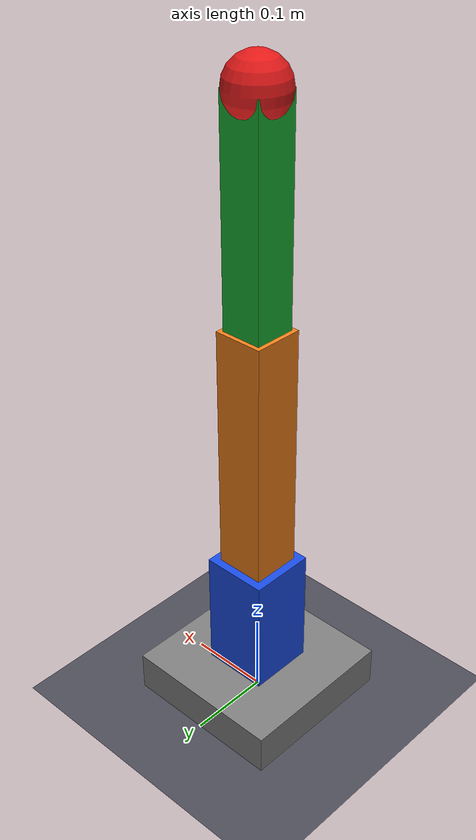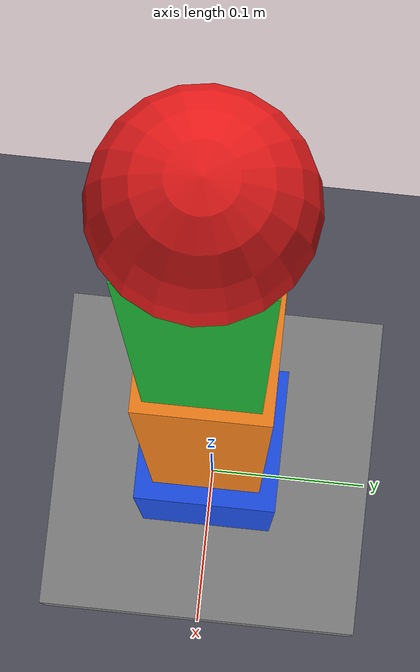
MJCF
<mujoco model="vla_arm">
  <compiler angle="radian"/>
  <option gravity="0 0 -9.81" timestep="0.002"/>

  <default>
    <joint damping="1.0" armature="0.1"/>
    <geom contype="0" conaffinity="0"/>
  </default>

  <worldbody>
    <light pos="0 0 2" dir="0 0 -1" diffuse="0.8 0.8 0.8"/>
    <geom name="ground" type="plane" size="2 2 0.1" rgba="0.3 0.3 0.35 1"/>

    <body name="base_link" pos="0 0 0">
      <geom type="box" size="0.10 0.10 0.025" pos="0 0 0.025" rgba="0.5 0.5 0.5 1"/>

      <body name="link1" pos="0 0 0.05">
        <joint name="joint1" type="hinge" axis="0 0 1" range="-3.14 3.14"/>
        <geom type="box" size="0.04 0.04 0.075" pos="0 0 0.075" rgba="0.1 0.3 0.9 1"/>

        <body name="link2" pos="0 0 0.15">
          <joint name="joint2" type="hinge" axis="0 1 0" range="-1.5 1.5"/>
          <geom type="box" size="0.03 0.03 0.15" pos="0 0 0.15" rgba="0.95 0.5 0.1 1"/>

          <body name="link3" pos="0 0 0.30">
            <joint name="joint3" type="hinge" axis="0 1 0" range="-2.5 2.5"/>
            <geom type="box" size="0.025 0.025 0.125" pos="0 0 0.125" rgba="0.1 0.7 0.2 1"/>

            <body name="tip_link" pos="0 0 0.25">
              <geom type="sphere" size="0.035" rgba="0.9 0.1 0.1 1"/>
            </body>
          </body>
        </body>
      </body>
    </body>
  </worldbody>

  <actuator>
    <position name="act_joint1" joint="joint1" kp="50" ctrlrange="-3.14 3.14"/>
    <position name="act_joint2" joint="joint2" kp="50" ctrlrange="-1.5 1.5"/>
    <position name="act_joint3" joint="joint3" kp="50" ctrlrange="-2.5 2.5"/>
  </actuator>
</mujoco>
